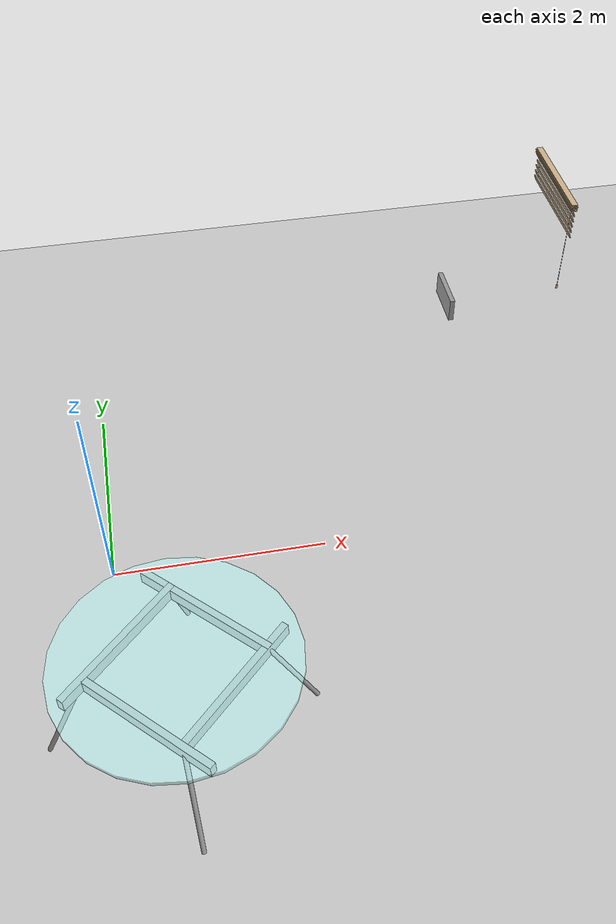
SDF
<sdf version="1.7">
 <world name="default">
  <model name="ground_plane">
   <static>1</static>
   <link name="link">
    <collision name="collision">
     <geometry><plane><normal>0 0 1</normal><size>100 100</size></plane></geometry>
     <surface>
      <contact><collide_bitmask>65535</collide_bitmask></contact>
      <friction><ode><mu>100</mu><mu2>50</mu2></ode></friction>
     </surface>
    </collision>
    <visual name="visual">
     <cast_shadows>0</cast_shadows>
     <geometry><plane><normal>0 0 1</normal><size>100 100</size></plane></geometry>
     <material>
      <script><uri>file://media/materials/scripts/gazebo.material</uri><name>Gazebo/Grey</name></script>
     </material>
    </visual>
   </link>
  </model>
  <model name="my_kitchen">
   <link name="link_clone_clone_clone_0_clone_clone_clone_0_clone_clone_clone_0_clone_0_clone_0">
    <inertial>
     <mass>1</mass>
     <inertia>
      <ixx>0.166667</ixx>
      <ixy>0</ixy>
      <ixz>0</ixz>
      <iyy>0.166667</iyy>
      <iyz>0</iyz>
      <izz>0.166667</izz>
     </inertia>
    </inertial>
    <pose>-0.177001 -0.511923 0.314755 0 -0 0</pose>
    <visual name="visual">
     <geometry><box><size>0.05 0.5 0.25</size></box></geometry>
     <material>
      <script><name>Gazebo/Grey</name><uri>file://media/materials/scripts/gazebo.material</uri></script>
      <shader type="pixel"><normal_map>__default__</normal_map></shader>
      <ambient>0.4 0.4 0.4 1</ambient>
      <diffuse>0.4 0.4 0.4 1</diffuse>
      <specular>0.01 0.01 0.01 1</specular>
      <emissive>0 0 0 1</emissive>
     </material>
     <pose>0 0 0.5 0 -0 1.5707</pose>
    </visual>
    <collision name="collision">
     <pose>0 0 0.5 0 -0 1.5707</pose>
     <geometry><box><size>0.05 0.5 0.25</size></box></geometry>
     <surface>
      <friction>
       <ode><mu>1</mu><mu2>1</mu2><fdir1>0 0 0</fdir1><slip1>0</slip1><slip2>0</slip2></ode>
       <torsional>
        <coefficient>1</coefficient>
        <patch_radius>0</patch_radius>
        <surface_radius>0</surface_radius>
        <use_patch_radius>1</use_patch_radius>
        <ode><slip>0</slip></ode>
       </torsional>
      </friction>
      <bounce><restitution_coefficient>0</restitution_coefficient><threshold>1e+06</threshold></bounce>
      <contact>
       <collide_without_contact>0</collide_without_contact>
       <collide_without_contact_bitmask>1</collide_without_contact_bitmask>
       <collide_bitmask>1</collide_bitmask>
       <ode>
        <soft_cfm>0</soft_cfm>
        <soft_erp>0.2</soft_erp>
        <kp>1e+13</kp>
        <kd>1</kd>
        <max_vel>0.01</max_vel>
        <min_depth>0</min_depth>
       </ode>
       <bullet>
        <split_impulse>1</split_impulse>
        <split_impulse_penetration_threshold>-0.01</split_impulse_penetration_threshold>
        <soft_cfm>0</soft_cfm>
        <soft_erp>0.2</soft_erp>
        <kp>1e+13</kp>
        <kd>1</kd>
       </bullet>
      </contact>
     </surface>
    </collision>
   </link>
   <static>1</static>
   <pose>4.27978 2.2633 0 0 0 -1.5708</pose>
  </model>
  <model name="my_round_table">
   <link name="link_0">
    <inertial>
     <mass>1</mass>
     <inertia><ixx>0.145833</ixx><ixy>0</ixy><ixz>0</ixz><iyy>0.145833</iyy><iyz>0</iyz><izz>0.125</izz></inertia>
    </inertial>
    <pose>-0.33877 -8.15163 0.5 0 -0 0</pose>
    <visual name="visual">
     <pose>0 0 0.45 0 -0 0</pose>
     <geometry><cylinder><radius>1</radius><length>0.04</length></cylinder></geometry>
     <material>
      <lighting>1</lighting>
      <script><uri>file://media/materials/scripts/gazebo.material</uri><name>Gazebo/Grey</name></script>
      <shader type="pixel"><normal_map>__default__</normal_map></shader>
      <ambient>0.79 1 1 0.4</ambient>
      <diffuse>0.79 1 1 1</diffuse>
      <specular>0.01 0.01 0.01 1</specular>
      <emissive>0 0 0 1</emissive>
     </material>
     <transparency>0.3</transparency>
    </visual>
    <collision name="collision">
     <pose>0 0 0.45 0 -0 0</pose>
     <geometry><cylinder><radius>1</radius><length>0.04</length></cylinder></geometry>
     <surface>
      <friction>
       <ode><mu>1</mu><mu2>1</mu2><fdir1>0 0 0</fdir1><slip1>0</slip1><slip2>0</slip2></ode>
       <torsional>
        <coefficient>1</coefficient>
        <patch_radius>0</patch_radius>
        <surface_radius>0</surface_radius>
        <use_patch_radius>1</use_patch_radius>
        <ode><slip>0</slip></ode>
       </torsional>
      </friction>
      <bounce><restitution_coefficient>0</restitution_coefficient><threshold>1e+06</threshold></bounce>
      <contact>
       <collide_without_contact>0</collide_without_contact>
       <collide_without_contact_bitmask>1</collide_without_contact_bitmask>
       <collide_bitmask>1</collide_bitmask>
       <ode>
        <soft_cfm>0</soft_cfm>
        <soft_erp>0.2</soft_erp>
        <kp>1e+13</kp>
        <kd>1</kd>
        <max_vel>0.01</max_vel>
        <min_depth>0</min_depth>
       </ode>
       <bullet>
        <split_impulse>1</split_impulse>
        <split_impulse_penetration_threshold>-0.01</split_impulse_penetration_threshold>
        <soft_cfm>0</soft_cfm>
        <soft_erp>0.2</soft_erp>
        <kp>1e+13</kp>
        <kd>1</kd>
       </bullet>
      </contact>
     </surface>
    </collision>
   </link>
   <link name="link_0_0">
    <inertial>
     <mass>1</mass>
     <inertia>
      <ixx>0.166667</ixx>
      <ixy>0</ixy>
      <ixz>0</ixz>
      <iyy>0.166667</iyy>
      <iyz>0</iyz>
      <izz>0.166667</izz>
     </inertia>
    </inertial>
    <pose>-0.834607 -8.25556 0.5 0 -0 0</pose>
    <visual name="visual">
     <pose>0 0 0.4 0 -0 0</pose>
     <geometry><box><size>0.06 1.3 0.12</size></box></geometry>
     <material>
      <lighting>1</lighting>
      <script><uri>file://media/materials/scripts/gazebo.material</uri><name>Gazebo/Grey</name></script>
      <shader type="pixel"><normal_map>__default__</normal_map></shader>
      <ambient>0.6 0.6 0.6 1</ambient>
      <diffuse>0.7 0.7 0.7 1</diffuse>
      <specular>0.01 0.01 0.01 1</specular>
      <emissive>0 0 0 1</emissive>
     </material>
    </visual>
    <collision name="collision">
     <pose>0 0 0.4 0 -0 0</pose>
     <geometry><box><size>0.06 1.3 0.12</size></box></geometry>
     <surface>
      <friction>
       <ode><mu>1</mu><mu2>1</mu2><fdir1>0 0 0</fdir1><slip1>0</slip1><slip2>0</slip2></ode>
       <torsional>
        <coefficient>1</coefficient>
        <patch_radius>0</patch_radius>
        <surface_radius>0</surface_radius>
        <use_patch_radius>1</use_patch_radius>
        <ode><slip>0</slip></ode>
       </torsional>
      </friction>
      <bounce><restitution_coefficient>0</restitution_coefficient><threshold>1e+06</threshold></bounce>
      <contact>
       <collide_without_contact>0</collide_without_contact>
       <collide_without_contact_bitmask>1</collide_without_contact_bitmask>
       <collide_bitmask>1</collide_bitmask>
       <ode>
        <soft_cfm>0</soft_cfm>
        <soft_erp>0.2</soft_erp>
        <kp>1e+13</kp>
        <kd>1</kd>
        <max_vel>0.01</max_vel>
        <min_depth>0</min_depth>
       </ode>
       <bullet>
        <split_impulse>1</split_impulse>
        <split_impulse_penetration_threshold>-0.01</split_impulse_penetration_threshold>
        <soft_cfm>0</soft_cfm>
        <soft_erp>0.2</soft_erp>
        <kp>1e+13</kp>
        <kd>1</kd>
       </bullet>
      </contact>
     </surface>
    </collision>
   </link>
   <link name="link_0_0_clone">
    <inertial>
     <mass>1</mass>
     <inertia>
      <ixx>0.166667</ixx>
      <ixy>0</ixy>
      <ixz>0</ixz>
      <iyy>0.166667</iyy>
      <iyz>0</iyz>
      <izz>0.166667</izz>
     </inertia>
    </inertial>
    <pose>-0.470736 -7.63546 0.5 0 -0 0</pose>
    <visual name="visual_0">
     <pose>0 0 0.4 0 -0 1.5707</pose>
     <geometry><box><size>0.06 1.3 0.12</size></box></geometry>
     <material>
      <lighting>1</lighting>
      <script><uri>file://media/materials/scripts/gazebo.material</uri><name>Gazebo/Grey</name></script>
      <shader type="pixel"><normal_map>__default__</normal_map></shader>
      <ambient>0.6 0.6 0.6 1</ambient>
      <diffuse>0.7 0.7 0.7 1</diffuse>
      <specular>0.01 0.01 0.01 1</specular>
      <emissive>0 0 0 1</emissive>
     </material>
    </visual>
    <collision name="collision">
     <pose>0 0 0.4 0 -0 1.5707</pose>
     <geometry><box><size>0.06 1.3 0.12</size></box></geometry>
     <surface>
      <friction>
       <ode><mu>1</mu><mu2>1</mu2><fdir1>0 0 0</fdir1><slip1>0</slip1><slip2>0</slip2></ode>
       <torsional>
        <coefficient>1</coefficient>
        <patch_radius>0</patch_radius>
        <surface_radius>0</surface_radius>
        <use_patch_radius>1</use_patch_radius>
        <ode><slip>0</slip></ode>
       </torsional>
      </friction>
      <bounce><restitution_coefficient>0</restitution_coefficient><threshold>1e+06</threshold></bounce>
      <contact>
       <collide_without_contact>0</collide_without_contact>
       <collide_without_contact_bitmask>1</collide_without_contact_bitmask>
       <collide_bitmask>1</collide_bitmask>
       <ode>
        <soft_cfm>0</soft_cfm>
        <soft_erp>0.2</soft_erp>
        <kp>1e+13</kp>
        <kd>1</kd>
        <max_vel>0.01</max_vel>
        <min_depth>0</min_depth>
       </ode>
       <bullet>
        <split_impulse>1</split_impulse>
        <split_impulse_penetration_threshold>-0.01</split_impulse_penetration_threshold>
        <soft_cfm>0</soft_cfm>
        <soft_erp>0.2</soft_erp>
        <kp>1e+13</kp>
        <kd>1</kd>
       </bullet>
      </contact>
     </surface>
    </collision>
   </link>
   <link name="link_0_0_clone_0">
    <inertial>
     <mass>1</mass>
     <inertia>
      <ixx>0.166667</ixx>
      <ixy>0</ixy>
      <ixz>0</ixz>
      <iyy>0.166667</iyy>
      <iyz>0</iyz>
      <izz>0.166667</izz>
     </inertia>
    </inertial>
    <pose>0.150666 -8.04578 0.5 0 -0 0</pose>
    <visual name="visual_0">
     <pose>0 0 0.4 0 -0 0</pose>
     <geometry><box><size>0.06 1.3 0.12</size></box></geometry>
     <material>
      <lighting>1</lighting>
      <script><uri>file://media/materials/scripts/gazebo.material</uri><name>Gazebo/Grey</name></script>
      <shader type="pixel"><normal_map>__default__</normal_map></shader>
      <ambient>0.6 0.6 0.6 1</ambient>
      <diffuse>0.7 0.7 0.7 1</diffuse>
      <specular>0.01 0.01 0.01 1</specular>
      <emissive>0 0 0 1</emissive>
     </material>
    </visual>
    <collision name="collision">
     <pose>0 0 0.4 0 -0 0</pose>
     <geometry><box><size>0.06 1.3 0.12</size></box></geometry>
     <surface>
      <friction>
       <ode><mu>1</mu><mu2>1</mu2><fdir1>0 0 0</fdir1><slip1>0</slip1><slip2>0</slip2></ode>
       <torsional>
        <coefficient>1</coefficient>
        <patch_radius>0</patch_radius>
        <surface_radius>0</surface_radius>
        <use_patch_radius>1</use_patch_radius>
        <ode><slip>0</slip></ode>
       </torsional>
      </friction>
      <bounce><restitution_coefficient>0</restitution_coefficient><threshold>1e+06</threshold></bounce>
      <contact>
       <collide_without_contact>0</collide_without_contact>
       <collide_without_contact_bitmask>1</collide_without_contact_bitmask>
       <collide_bitmask>1</collide_bitmask>
       <ode>
        <soft_cfm>0</soft_cfm>
        <soft_erp>0.2</soft_erp>
        <kp>1e+13</kp>
        <kd>1</kd>
        <max_vel>0.01</max_vel>
        <min_depth>0</min_depth>
       </ode>
       <bullet>
        <split_impulse>1</split_impulse>
        <split_impulse_penetration_threshold>-0.01</split_impulse_penetration_threshold>
        <soft_cfm>0</soft_cfm>
        <soft_erp>0.2</soft_erp>
        <kp>1e+13</kp>
        <kd>1</kd>
       </bullet>
      </contact>
     </surface>
    </collision>
   </link>
   <link name="link_0_0_clone_clone">
    <inertial>
     <mass>1</mass>
     <inertia>
      <ixx>0.166667</ixx>
      <ixy>0</ixy>
      <ixz>0</ixz>
      <iyy>0.166667</iyy>
      <iyz>0</iyz>
      <izz>0.166667</izz>
     </inertia>
    </inertial>
    <pose>-0.215262 -8.66786 0.5 0 -0 0</pose>
    <visual name="visual_0">
     <pose>0 0 0.4 0 -0 1.5707</pose>
     <geometry><box><size>0.06 1.3 0.12</size></box></geometry>
     <material>
      <lighting>1</lighting>
      <script><uri>file://media/materials/scripts/gazebo.material</uri><name>Gazebo/Grey</name></script>
      <shader type="pixel"><normal_map>__default__</normal_map></shader>
      <ambient>0.6 0.6 0.6 1</ambient>
      <diffuse>0.7 0.7 0.7 1</diffuse>
      <specular>0.01 0.01 0.01 1</specular>
      <emissive>0 0 0 1</emissive>
     </material>
    </visual>
    <collision name="collision">
     <pose>0 0 0.4 0 -0 1.5707</pose>
     <geometry><box><size>0.06 1.3 0.12</size></box></geometry>
     <surface>
      <friction>
       <ode><mu>1</mu><mu2>1</mu2><fdir1>0 0 0</fdir1><slip1>0</slip1><slip2>0</slip2></ode>
       <torsional>
        <coefficient>1</coefficient>
        <patch_radius>0</patch_radius>
        <surface_radius>0</surface_radius>
        <use_patch_radius>1</use_patch_radius>
        <ode><slip>0</slip></ode>
       </torsional>
      </friction>
      <bounce><restitution_coefficient>0</restitution_coefficient><threshold>1e+06</threshold></bounce>
      <contact>
       <collide_without_contact>0</collide_without_contact>
       <collide_without_contact_bitmask>1</collide_without_contact_bitmask>
       <collide_bitmask>1</collide_bitmask>
       <ode>
        <soft_cfm>0</soft_cfm>
        <soft_erp>0.2</soft_erp>
        <kp>1e+13</kp>
        <kd>1</kd>
        <max_vel>0.01</max_vel>
        <min_depth>0</min_depth>
       </ode>
       <bullet>
        <split_impulse>1</split_impulse>
        <split_impulse_penetration_threshold>-0.01</split_impulse_penetration_threshold>
        <soft_cfm>0</soft_cfm>
        <soft_erp>0.2</soft_erp>
        <kp>1e+13</kp>
        <kd>1</kd>
       </bullet>
      </contact>
     </surface>
    </collision>
   </link>
   <link name="link_1_clone_1_clone_clone">
    <inertial>
     <mass>1</mass>
     <inertia><ixx>0.145833</ixx><ixy>0</ixy><ixz>0</ixz><iyy>0.145833</iyy><iyz>0</iyz><izz>0.125</izz></inertia>
    </inertial>
    <pose>-0.929071 -7.47144 0.501681 0 0 -0.237389</pose>
    <visual name="visual">
     <pose>0 0 -0.02 0.3 0.3 0</pose>
     <geometry><cylinder><radius>0.02</radius><length>1</length></cylinder></geometry>
     <material>
      <lighting>1</lighting>
      <script><uri>file://media/materials/scripts/gazebo.material</uri><name>Gazebo/Grey</name></script>
      <shader type="pixel"><normal_map>__default__</normal_map></shader>
      <ambient>0.5 0.5 0.5 1</ambient>
      <diffuse>0.8 0.8 0.8 1</diffuse>
      <specular>0.01 0.01 0.01 1</specular>
      <emissive>0 0 0 1</emissive>
     </material>
    </visual>
    <collision name="collision">
     <pose>0 0 -0.02 0.3 0.3 0</pose>
     <geometry><cylinder><radius>0.02</radius><length>1</length></cylinder></geometry>
     <surface>
      <friction>
       <ode><mu>1</mu><mu2>1</mu2><fdir1>0 0 0</fdir1><slip1>0</slip1><slip2>0</slip2></ode>
       <torsional>
        <coefficient>1</coefficient>
        <patch_radius>0</patch_radius>
        <surface_radius>0</surface_radius>
        <use_patch_radius>1</use_patch_radius>
        <ode><slip>0</slip></ode>
       </torsional>
      </friction>
      <bounce><restitution_coefficient>0</restitution_coefficient><threshold>1e+06</threshold></bounce>
      <contact>
       <collide_without_contact>0</collide_without_contact>
       <collide_without_contact_bitmask>1</collide_without_contact_bitmask>
       <collide_bitmask>1</collide_bitmask>
       <ode>
        <soft_cfm>0</soft_cfm>
        <soft_erp>0.2</soft_erp>
        <kp>1e+13</kp>
        <kd>1</kd>
        <max_vel>0.01</max_vel>
        <min_depth>0</min_depth>
       </ode>
       <bullet>
        <split_impulse>1</split_impulse>
        <split_impulse_penetration_threshold>-0.01</split_impulse_penetration_threshold>
        <soft_cfm>0</soft_cfm>
        <soft_erp>0.2</soft_erp>
        <kp>1e+13</kp>
        <kd>1</kd>
       </bullet>
      </contact>
     </surface>
    </collision>
   </link>
   <link name="link_1_clone_1_clone_clone_clone">
    <inertial>
     <mass>1</mass>
     <inertia><ixx>0.145833</ixx><ixy>0</ixy><ixz>0</ixz><iyy>0.145833</iyy><iyz>0</iyz><izz>0.125</izz></inertia>
    </inertial>
    <pose>-0.965306 -8.81368 0.501681 0 -0 1.63052</pose>
    <visual name="visual">
     <pose>0 0 -0.02 0.3 0.3 0</pose>
     <geometry><cylinder><radius>0.02</radius><length>1</length></cylinder></geometry>
     <material>
      <lighting>1</lighting>
      <script><uri>file://media/materials/scripts/gazebo.material</uri><name>Gazebo/Grey</name></script>
      <shader type="pixel"><normal_map>__default__</normal_map></shader>
      <ambient>0.5 0.5 0.5 1</ambient>
      <diffuse>0.8 0.8 0.8 1</diffuse>
      <specular>0.01 0.01 0.01 1</specular>
      <emissive>0 0 0 1</emissive>
     </material>
    </visual>
    <collision name="collision">
     <pose>0 0 -0.02 0.3 0.3 0</pose>
     <geometry><cylinder><radius>0.02</radius><length>1</length></cylinder></geometry>
     <surface>
      <friction>
       <ode><mu>1</mu><mu2>1</mu2><fdir1>0 0 0</fdir1><slip1>0</slip1><slip2>0</slip2></ode>
       <torsional>
        <coefficient>1</coefficient>
        <patch_radius>0</patch_radius>
        <surface_radius>0</surface_radius>
        <use_patch_radius>1</use_patch_radius>
        <ode><slip>0</slip></ode>
       </torsional>
      </friction>
      <bounce><restitution_coefficient>0</restitution_coefficient><threshold>1e+06</threshold></bounce>
      <contact>
       <collide_without_contact>0</collide_without_contact>
       <collide_without_contact_bitmask>1</collide_without_contact_bitmask>
       <collide_bitmask>1</collide_bitmask>
       <ode>
        <soft_cfm>0</soft_cfm>
        <soft_erp>0.2</soft_erp>
        <kp>1e+13</kp>
        <kd>1</kd>
        <max_vel>0.01</max_vel>
        <min_depth>0</min_depth>
       </ode>
       <bullet>
        <split_impulse>1</split_impulse>
        <split_impulse_penetration_threshold>-0.01</split_impulse_penetration_threshold>
        <soft_cfm>0</soft_cfm>
        <soft_erp>0.2</soft_erp>
        <kp>1e+13</kp>
        <kd>1</kd>
       </bullet>
      </contact>
     </surface>
    </collision>
   </link>
   <link name="link_1_clone_1_clone_clone_clone_0">
    <inertial>
     <mass>1</mass>
     <inertia><ixx>0.145833</ixx><ixy>0</ixy><ixz>0</ixz><iyy>0.145833</iyy><iyz>0</iyz><izz>0.125</izz></inertia>
    </inertial>
    <pose>0.275919 -7.4779 0.501681 0 0 -1.39702</pose>
    <visual name="visual">
     <pose>0 0 -0.02 0.3 0.3 0</pose>
     <geometry><cylinder><radius>0.02</radius><length>1</length></cylinder></geometry>
     <material>
      <lighting>1</lighting>
      <script><uri>file://media/materials/scripts/gazebo.material</uri><name>Gazebo/Grey</name></script>
      <shader type="pixel"><normal_map>__default__</normal_map></shader>
      <ambient>0.5 0.5 0.5 1</ambient>
      <diffuse>0.8 0.8 0.8 1</diffuse>
      <specular>0.01 0.01 0.01 1</specular>
      <emissive>0 0 0 1</emissive>
     </material>
    </visual>
    <collision name="collision">
     <pose>0 0 0 0.3 0.3 0</pose>
     <geometry><cylinder><radius>0.02</radius><length>1</length></cylinder></geometry>
     <surface>
      <friction>
       <ode><mu>1</mu><mu2>1</mu2><fdir1>0 0 0</fdir1><slip1>0</slip1><slip2>0</slip2></ode>
       <torsional>
        <coefficient>1</coefficient>
        <patch_radius>0</patch_radius>
        <surface_radius>0</surface_radius>
        <use_patch_radius>1</use_patch_radius>
        <ode><slip>0</slip></ode>
       </torsional>
      </friction>
      <bounce><restitution_coefficient>0</restitution_coefficient><threshold>1e+06</threshold></bounce>
      <contact>
       <collide_without_contact>0</collide_without_contact>
       <collide_without_contact_bitmask>1</collide_without_contact_bitmask>
       <collide_bitmask>1</collide_bitmask>
       <ode>
        <soft_cfm>0</soft_cfm>
        <soft_erp>0.2</soft_erp>
        <kp>1e+13</kp>
        <kd>1</kd>
        <max_vel>0.01</max_vel>
        <min_depth>0</min_depth>
       </ode>
       <bullet>
        <split_impulse>1</split_impulse>
        <split_impulse_penetration_threshold>-0.01</split_impulse_penetration_threshold>
        <soft_cfm>0</soft_cfm>
        <soft_erp>0.2</soft_erp>
        <kp>1e+13</kp>
        <kd>1</kd>
       </bullet>
      </contact>
     </surface>
    </collision>
   </link>
   <link name="link_1_clone_1_clone_clone_clone_0_clone">
    <inertial>
     <mass>1</mass>
     <inertia><ixx>0.145833</ixx><ixy>0</ixy><ixz>0</ixz><iyy>0.145833</iyy><iyz>0</iyz><izz>0.125</izz></inertia>
    </inertial>
    <pose>0.309037 -8.79302 0.501681 0 0 -3.03586</pose>
    <visual name="visual">
     <pose>0 0 -0.02 0.3 0.3 0</pose>
     <geometry><cylinder><radius>0.02</radius><length>1</length></cylinder></geometry>
     <material>
      <lighting>1</lighting>
      <script><uri>file://media/materials/scripts/gazebo.material</uri><name>Gazebo/Grey</name></script>
      <shader type="pixel"><normal_map>__default__</normal_map></shader>
      <ambient>0.5 0.5 0.5 1</ambient>
      <diffuse>0.8 0.8 0.8 1</diffuse>
      <specular>0.01 0.01 0.01 1</specular>
      <emissive>0 0 0 1</emissive>
     </material>
    </visual>
    <collision name="collision">
     <pose>0 0 -0.02 0.3 0.3 0</pose>
     <geometry><cylinder><radius>0.02</radius><length>1</length></cylinder></geometry>
     <surface>
      <friction>
       <ode><mu>1</mu><mu2>1</mu2><fdir1>0 0 0</fdir1><slip1>0</slip1><slip2>0</slip2></ode>
       <torsional>
        <coefficient>1</coefficient>
        <patch_radius>0</patch_radius>
        <surface_radius>0</surface_radius>
        <use_patch_radius>1</use_patch_radius>
        <ode><slip>0</slip></ode>
       </torsional>
      </friction>
      <bounce><restitution_coefficient>0</restitution_coefficient><threshold>1e+06</threshold></bounce>
      <contact>
       <collide_without_contact>0</collide_without_contact>
       <collide_without_contact_bitmask>1</collide_without_contact_bitmask>
       <collide_bitmask>1</collide_bitmask>
       <ode>
        <soft_cfm>0</soft_cfm>
        <soft_erp>0.2</soft_erp>
        <kp>1e+13</kp>
        <kd>1</kd>
        <max_vel>0.01</max_vel>
        <min_depth>0</min_depth>
       </ode>
       <bullet>
        <split_impulse>1</split_impulse>
        <split_impulse_penetration_threshold>-0.01</split_impulse_penetration_threshold>
        <soft_cfm>0</soft_cfm>
        <soft_erp>0.2</soft_erp>
        <kp>1e+13</kp>
        <kd>1</kd>
       </bullet>
      </contact>
     </surface>
    </collision>
   </link>
   <static>1</static>
   <pose>6.52338 3.85266 0 0 0 -0.785398</pose>
  </model>
  <model name="my_blinds">
   <link name="link">
    <inertial>
     <mass>1</mass>
     <inertia>
      <ixx>0.166667</ixx>
      <ixy>0</ixy>
      <ixz>0</ixz>
      <iyy>0.166667</iyy>
      <iyz>0</iyz>
      <izz>0.166667</izz>
     </inertia>
    </inertial>
    <pose>0.455071 0.017039 0 0 -0 0</pose>
    <visual name="visual">
     <geometry><box><size>0.01 1.05 0.06</size></box></geometry>
     <material>
      <script><name>Gazebo/Grey</name><uri>file://media/materials/scripts/gazebo.material</uri></script>
      <shader type="pixel"><normal_map>__default__</normal_map></shader>
      <ambient>0.82 0.71 0.55 1</ambient>
      <diffuse>0.82 0.71 0.55 1</diffuse>
      <specular>0.01 0.01 0.01 1</specular>
      <emissive>0 0 0 1</emissive>
     </material>
     <pose>0 0 2.187 3.14159 1.57079 3.14159</pose>
    </visual>
    <collision name="collision">
     <pose>0 0 2.187 3.14159 1.57079 3.14159</pose>
     <geometry><box><size>0.01 1.05 0.06</size></box></geometry>
     <surface>
      <friction>
       <ode><mu>1</mu><mu2>1</mu2><fdir1>0 0 0</fdir1><slip1>0</slip1><slip2>0</slip2></ode>
       <torsional>
        <coefficient>1</coefficient>
        <patch_radius>0</patch_radius>
        <surface_radius>0</surface_radius>
        <use_patch_radius>1</use_patch_radius>
        <ode><slip>0</slip></ode>
       </torsional>
      </friction>
      <bounce><restitution_coefficient>0</restitution_coefficient><threshold>1e+06</threshold></bounce>
      <contact>
       <collide_without_contact>0</collide_without_contact>
       <collide_without_contact_bitmask>1</collide_without_contact_bitmask>
       <collide_bitmask>1</collide_bitmask>
       <ode>
        <soft_cfm>0</soft_cfm>
        <soft_erp>0.2</soft_erp>
        <kp>1e+13</kp>
        <kd>1</kd>
        <max_vel>0.01</max_vel>
        <min_depth>0</min_depth>
       </ode>
       <bullet>
        <split_impulse>1</split_impulse>
        <split_impulse_penetration_threshold>-0.01</split_impulse_penetration_threshold>
        <soft_cfm>0</soft_cfm>
        <soft_erp>0.2</soft_erp>
        <kp>1e+13</kp>
        <kd>1</kd>
       </bullet>
      </contact>
     </surface>
    </collision>
   </link>
   <link name="left_rope">
    <inertial>
     <mass>1</mass>
     <inertia><ixx>0.145833</ixx><ixy>0</ixy><ixz>0</ixz><iyy>0.145833</iyy><iyz>0</iyz><izz>0.125</izz></inertia>
    </inertial>
    <pose>0.452907 0.474129 0.827292 0 -0 0</pose>
    <visual name="visual">
     <pose>0 0 1.24 0 -0 0</pose>
     <geometry><cylinder><radius>0.002</radius><length>0.345</length></cylinder></geometry>
     <material>
      <lighting>1</lighting>
      <script><uri>file://media/materials/scripts/gazebo.material</uri><name>Gazebo/Grey</name></script>
      <shader type="pixel"><normal_map>__default__</normal_map></shader>
      <ambient>1 1 1 1</ambient>
      <diffuse>0.8 0.8 0.8 1</diffuse>
      <specular>0.01 0.01 0.01 1</specular>
      <emissive>0 0 0 1</emissive>
     </material>
    </visual>
    <collision name="collision">
     <pose>0 0 1.24 0 -0 0</pose>
     <geometry><cylinder><radius>0.002</radius><length>0.345</length></cylinder></geometry>
     <surface>
      <friction>
       <ode><mu>1</mu><mu2>1</mu2><fdir1>0 0 0</fdir1><slip1>0</slip1><slip2>0</slip2></ode>
       <torsional>
        <coefficient>1</coefficient>
        <patch_radius>0</patch_radius>
        <surface_radius>0</surface_radius>
        <use_patch_radius>1</use_patch_radius>
        <ode><slip>0</slip></ode>
       </torsional>
      </friction>
      <bounce><restitution_coefficient>0</restitution_coefficient><threshold>1e+06</threshold></bounce>
      <contact>
       <collide_without_contact>0</collide_without_contact>
       <collide_without_contact_bitmask>1</collide_without_contact_bitmask>
       <collide_bitmask>1</collide_bitmask>
       <ode>
        <soft_cfm>0</soft_cfm>
        <soft_erp>0.2</soft_erp>
        <kp>1e+13</kp>
        <kd>1</kd>
        <max_vel>0.01</max_vel>
        <min_depth>0</min_depth>
       </ode>
       <bullet>
        <split_impulse>1</split_impulse>
        <split_impulse_penetration_threshold>-0.01</split_impulse_penetration_threshold>
        <soft_cfm>0</soft_cfm>
        <soft_erp>0.2</soft_erp>
        <kp>1e+13</kp>
        <kd>1</kd>
       </bullet>
      </contact>
     </surface>
    </collision>
   </link>
   <link name="link_1">
    <inertial>
     <mass>1</mass>
     <inertia>
      <ixx>0.166667</ixx>
      <ixy>0</ixy>
      <ixz>0</ixz>
      <iyy>0.166667</iyy>
      <iyz>0</iyz>
      <izz>0.166667</izz>
     </inertia>
    </inertial>
    <pose>0.455071 0.017039 0 0 -0 0</pose>
    <visual name="visual">
     <geometry><box><size>0.01 1.05 0.06</size></box></geometry>
     <material>
      <script><name>Gazebo/Grey</name><uri>file://media/materials/scripts/gazebo.material</uri></script>
      <shader type="pixel"><normal_map>__default__</normal_map></shader>
      <ambient>0.82 0.71 0.55 1</ambient>
      <diffuse>0.82 0.71 0.55 1</diffuse>
      <specular>0.01 0.01 0.01 1</specular>
      <emissive>0 0 0 1</emissive>
     </material>
     <pose>0 0 2.15 0 -0.39 0</pose>
    </visual>
    <collision name="collision">
     <pose>0 0 2.15 0 -0.39 0</pose>
     <geometry><box><size>0.01 1.05 0.06</size></box></geometry>
     <surface>
      <friction>
       <ode><mu>1</mu><mu2>1</mu2><fdir1>0 0 0</fdir1><slip1>0</slip1><slip2>0</slip2></ode>
       <torsional>
        <coefficient>1</coefficient>
        <patch_radius>0</patch_radius>
        <surface_radius>0</surface_radius>
        <use_patch_radius>1</use_patch_radius>
        <ode><slip>0</slip></ode>
       </torsional>
      </friction>
      <bounce><restitution_coefficient>0</restitution_coefficient><threshold>1e+06</threshold></bounce>
      <contact>
       <collide_without_contact>0</collide_without_contact>
       <collide_without_contact_bitmask>1</collide_without_contact_bitmask>
       <collide_bitmask>1</collide_bitmask>
       <ode>
        <soft_cfm>0</soft_cfm>
        <soft_erp>0.2</soft_erp>
        <kp>1e+13</kp>
        <kd>1</kd>
        <max_vel>0.01</max_vel>
        <min_depth>0</min_depth>
       </ode>
       <bullet>
        <split_impulse>1</split_impulse>
        <split_impulse_penetration_threshold>-0.01</split_impulse_penetration_threshold>
        <soft_cfm>0</soft_cfm>
        <soft_erp>0.2</soft_erp>
        <kp>1e+13</kp>
        <kd>1</kd>
       </bullet>
      </contact>
     </surface>
    </collision>
   </link>
   <link name="link_1_0">
    <inertial>
     <mass>1</mass>
     <inertia><ixx>0.145833</ixx><ixy>0</ixy><ixz>0</ixz><iyy>0.145833</iyy><iyz>0</iyz><izz>0.125</izz></inertia>
    </inertial>
    <pose>0.454407 -0.443789 1.24533 0 -0 0</pose>
    <visual name="visual">
     <geometry><cylinder><radius>0.01</radius><length>0.04</length></cylinder></geometry>
     <material>
      <lighting>1</lighting>
      <script><uri>file://media/materials/scripts/gazebo.material</uri><name>Gazebo/Grey</name></script>
      <shader type="pixel"><normal_map>__default__</normal_map></shader>
      <ambient>0.82 0.71 0.55 1</ambient>
      <diffuse>0.82 0.71 0.55 1</diffuse>
      <specular>0.01 0.01 0.01 1</specular>
      <emissive>0 0 0 1</emissive>
     </material>
    </visual>
    <collision name="collision">
     <geometry><cylinder><radius>0.01</radius><length>0.04</length></cylinder></geometry>
     <surface>
      <friction>
       <ode><mu>1</mu><mu2>1</mu2><fdir1>0 0 0</fdir1><slip1>0</slip1><slip2>0</slip2></ode>
       <torsional>
        <coefficient>1</coefficient>
        <patch_radius>0</patch_radius>
        <surface_radius>0</surface_radius>
        <use_patch_radius>1</use_patch_radius>
        <ode><slip>0</slip></ode>
       </torsional>
      </friction>
      <bounce><restitution_coefficient>0</restitution_coefficient><threshold>1e+06</threshold></bounce>
      <contact>
       <collide_without_contact>0</collide_without_contact>
       <collide_without_contact_bitmask>1</collide_without_contact_bitmask>
       <collide_bitmask>1</collide_bitmask>
       <ode>
        <soft_cfm>0</soft_cfm>
        <soft_erp>0.2</soft_erp>
        <kp>1e+13</kp>
        <kd>1</kd>
        <max_vel>0.01</max_vel>
        <min_depth>0</min_depth>
       </ode>
       <bullet>
        <split_impulse>1</split_impulse>
        <split_impulse_penetration_threshold>-0.01</split_impulse_penetration_threshold>
        <soft_cfm>0</soft_cfm>
        <soft_erp>0.2</soft_erp>
        <kp>1e+13</kp>
        <kd>1</kd>
       </bullet>
      </contact>
     </surface>
    </collision>
   </link>
   <link name="link_2">
    <inertial>
     <mass>1</mass>
     <inertia>
      <ixx>0.166667</ixx>
      <ixy>0</ixy>
      <ixz>0</ixz>
      <iyy>0.166667</iyy>
      <iyz>0</iyz>
      <izz>0.166667</izz>
     </inertia>
    </inertial>
    <pose>0.455071 0.017039 0 0 -0 0</pose>
    <visual name="visual">
     <geometry><box><size>0.01 1.05 0.06</size></box></geometry>
     <material>
      <script><name>Gazebo/Grey</name><uri>file://media/materials/scripts/gazebo.material</uri></script>
      <shader type="pixel"><normal_map>__default__</normal_map></shader>
      <ambient>0.82 0.71 0.55 1</ambient>
      <diffuse>0.82 0.71 0.55 1</diffuse>
      <specular>0.01 0.01 0.01 1</specular>
      <emissive>0 0 0 1</emissive>
     </material>
     <pose>0 0 2.09 0 -0.39 0</pose>
    </visual>
    <collision name="collision">
     <pose>0 0 2.09 0 -0.39 0</pose>
     <geometry><box><size>0.01 1.05 0.06</size></box></geometry>
     <surface>
      <friction>
       <ode><mu>1</mu><mu2>1</mu2><fdir1>0 0 0</fdir1><slip1>0</slip1><slip2>0</slip2></ode>
       <torsional>
        <coefficient>1</coefficient>
        <patch_radius>0</patch_radius>
        <surface_radius>0</surface_radius>
        <use_patch_radius>1</use_patch_radius>
        <ode><slip>0</slip></ode>
       </torsional>
      </friction>
      <bounce><restitution_coefficient>0</restitution_coefficient><threshold>1e+06</threshold></bounce>
      <contact>
       <collide_without_contact>0</collide_without_contact>
       <collide_without_contact_bitmask>1</collide_without_contact_bitmask>
       <collide_bitmask>1</collide_bitmask>
       <ode>
        <soft_cfm>0</soft_cfm>
        <soft_erp>0.2</soft_erp>
        <kp>1e+13</kp>
        <kd>1</kd>
        <max_vel>0.01</max_vel>
        <min_depth>0</min_depth>
       </ode>
       <bullet>
        <split_impulse>1</split_impulse>
        <split_impulse_penetration_threshold>-0.01</split_impulse_penetration_threshold>
        <soft_cfm>0</soft_cfm>
        <soft_erp>0.2</soft_erp>
        <kp>1e+13</kp>
        <kd>1</kd>
       </bullet>
      </contact>
     </surface>
    </collision>
   </link>
   <link name="link_3">
    <inertial>
     <mass>1</mass>
     <inertia>
      <ixx>0.166667</ixx>
      <ixy>0</ixy>
      <ixz>0</ixz>
      <iyy>0.166667</iyy>
      <iyz>0</iyz>
      <izz>0.166667</izz>
     </inertia>
    </inertial>
    <pose>0.455071 0.017039 0 0 -0 0</pose>
    <visual name="visual">
     <geometry><box><size>0.01 1.05 0.06</size></box></geometry>
     <material>
      <script><name>Gazebo/Grey</name><uri>file://media/materials/scripts/gazebo.material</uri></script>
      <shader type="pixel"><normal_map>__default__</normal_map></shader>
      <ambient>0.82 0.71 0.55 1</ambient>
      <diffuse>0.82 0.71 0.55 1</diffuse>
      <specular>0.01 0.01 0.01 1</specular>
      <emissive>0 0 0 1</emissive>
     </material>
     <pose>0 0 2.03 0 -0.39 0</pose>
    </visual>
    <collision name="collision">
     <pose>0 0 2.03 0 -0.39 0</pose>
     <geometry><box><size>0.01 1.05 0.06</size></box></geometry>
     <surface>
      <friction>
       <ode><mu>1</mu><mu2>1</mu2><fdir1>0 0 0</fdir1><slip1>0</slip1><slip2>0</slip2></ode>
       <torsional>
        <coefficient>1</coefficient>
        <patch_radius>0</patch_radius>
        <surface_radius>0</surface_radius>
        <use_patch_radius>1</use_patch_radius>
        <ode><slip>0</slip></ode>
       </torsional>
      </friction>
      <bounce><restitution_coefficient>0</restitution_coefficient><threshold>1e+06</threshold></bounce>
      <contact>
       <collide_without_contact>0</collide_without_contact>
       <collide_without_contact_bitmask>1</collide_without_contact_bitmask>
       <collide_bitmask>1</collide_bitmask>
       <ode>
        <soft_cfm>0</soft_cfm>
        <soft_erp>0.2</soft_erp>
        <kp>1e+13</kp>
        <kd>1</kd>
        <max_vel>0.01</max_vel>
        <min_depth>0</min_depth>
       </ode>
       <bullet>
        <split_impulse>1</split_impulse>
        <split_impulse_penetration_threshold>-0.01</split_impulse_penetration_threshold>
        <soft_cfm>0</soft_cfm>
        <soft_erp>0.2</soft_erp>
        <kp>1e+13</kp>
        <kd>1</kd>
       </bullet>
      </contact>
     </surface>
    </collision>
   </link>
   <link name="link_4">
    <inertial>
     <mass>1</mass>
     <inertia>
      <ixx>0.166667</ixx>
      <ixy>0</ixy>
      <ixz>0</ixz>
      <iyy>0.166667</iyy>
      <iyz>0</iyz>
      <izz>0.166667</izz>
     </inertia>
    </inertial>
    <pose>0.455071 0.017039 0 0 -0 0</pose>
    <visual name="visual">
     <geometry><box><size>0.01 1.05 0.06</size></box></geometry>
     <material>
      <script><name>Gazebo/Grey</name><uri>file://media/materials/scripts/gazebo.material</uri></script>
      <shader type="pixel"><normal_map>__default__</normal_map></shader>
      <ambient>0.82 0.71 0.55 1</ambient>
      <diffuse>0.82 0.71 0.55 1</diffuse>
      <specular>0.01 0.01 0.01 1</specular>
      <emissive>0 0 0 1</emissive>
     </material>
     <pose>0 0 1.97 0 -0.39 0</pose>
    </visual>
    <collision name="collision">
     <pose>0 0 1.97 0 -0.39 0</pose>
     <geometry><box><size>0.01 1.05 0.06</size></box></geometry>
     <surface>
      <friction>
       <ode><mu>1</mu><mu2>1</mu2><fdir1>0 0 0</fdir1><slip1>0</slip1><slip2>0</slip2></ode>
       <torsional>
        <coefficient>1</coefficient>
        <patch_radius>0</patch_radius>
        <surface_radius>0</surface_radius>
        <use_patch_radius>1</use_patch_radius>
        <ode><slip>0</slip></ode>
       </torsional>
      </friction>
      <bounce><restitution_coefficient>0</restitution_coefficient><threshold>1e+06</threshold></bounce>
      <contact>
       <collide_without_contact>0</collide_without_contact>
       <collide_without_contact_bitmask>1</collide_without_contact_bitmask>
       <collide_bitmask>1</collide_bitmask>
       <ode>
        <soft_cfm>0</soft_cfm>
        <soft_erp>0.2</soft_erp>
        <kp>1e+13</kp>
        <kd>1</kd>
        <max_vel>0.01</max_vel>
        <min_depth>0</min_depth>
       </ode>
       <bullet>
        <split_impulse>1</split_impulse>
        <split_impulse_penetration_threshold>-0.01</split_impulse_penetration_threshold>
        <soft_cfm>0</soft_cfm>
        <soft_erp>0.2</soft_erp>
        <kp>1e+13</kp>
        <kd>1</kd>
       </bullet>
      </contact>
     </surface>
    </collision>
   </link>
   <link name="link_5">
    <inertial>
     <mass>1</mass>
     <inertia>
      <ixx>0.166667</ixx>
      <ixy>0</ixy>
      <ixz>0</ixz>
      <iyy>0.166667</iyy>
      <iyz>0</iyz>
      <izz>0.166667</izz>
     </inertia>
    </inertial>
    <pose>0.455071 0.017039 0 0 -0 0</pose>
    <visual name="visual">
     <geometry><box><size>0.01 1.05 0.06</size></box></geometry>
     <material>
      <script><name>Gazebo/Grey</name><uri>file://media/materials/scripts/gazebo.material</uri></script>
      <shader type="pixel"><normal_map>__default__</normal_map></shader>
      <ambient>0.82 0.71 0.55 1</ambient>
      <diffuse>0.82 0.71 0.55 1</diffuse>
      <specular>0.01 0.01 0.01 1</specular>
      <emissive>0 0 0 1</emissive>
     </material>
     <pose>0 0 1.91 0 -0.39 0</pose>
    </visual>
    <collision name="collision">
     <pose>0 0 1.91 0 -0.39 0</pose>
     <geometry><box><size>0.01 1.05 0.06</size></box></geometry>
     <surface>
      <friction>
       <ode><mu>1</mu><mu2>1</mu2><fdir1>0 0 0</fdir1><slip1>0</slip1><slip2>0</slip2></ode>
       <torsional>
        <coefficient>1</coefficient>
        <patch_radius>0</patch_radius>
        <surface_radius>0</surface_radius>
        <use_patch_radius>1</use_patch_radius>
        <ode><slip>0</slip></ode>
       </torsional>
      </friction>
      <bounce><restitution_coefficient>0</restitution_coefficient><threshold>1e+06</threshold></bounce>
      <contact>
       <collide_without_contact>0</collide_without_contact>
       <collide_without_contact_bitmask>1</collide_without_contact_bitmask>
       <collide_bitmask>1</collide_bitmask>
       <ode>
        <soft_cfm>0</soft_cfm>
        <soft_erp>0.2</soft_erp>
        <kp>1e+13</kp>
        <kd>1</kd>
        <max_vel>0.01</max_vel>
        <min_depth>0</min_depth>
       </ode>
       <bullet>
        <split_impulse>1</split_impulse>
        <split_impulse_penetration_threshold>-0.01</split_impulse_penetration_threshold>
        <soft_cfm>0</soft_cfm>
        <soft_erp>0.2</soft_erp>
        <kp>1e+13</kp>
        <kd>1</kd>
       </bullet>
      </contact>
     </surface>
    </collision>
   </link>
   <link name="link_clone">
    <inertial>
     <mass>1</mass>
     <inertia>
      <ixx>0.166667</ixx>
      <ixy>0</ixy>
      <ixz>0</ixz>
      <iyy>0.166667</iyy>
      <iyz>0</iyz>
      <izz>0.166667</izz>
     </inertia>
    </inertial>
    <pose>0.452148 0.026043 0.012868 0 -0 0</pose>
    <visual name="visual">
     <geometry><box><size>0.01 1.05 0.06</size></box></geometry>
     <material>
      <script><name>Gazebo/Grey</name><uri>file://media/materials/scripts/gazebo.material</uri></script>
      <shader type="pixel"><normal_map>__default__</normal_map></shader>
      <ambient>0.82 0.71 0.55 1</ambient>
      <diffuse>0.82 0.71 0.55 1</diffuse>
      <specular>0.01 0.01 0.01 1</specular>
      <emissive>0 0 0 1</emissive>
     </material>
     <pose>0 0 2.187 3.14159 1.57079 3.14159</pose>
    </visual>
    <collision name="collision">
     <pose>0 0 2.187 3.14159 1.57079 3.14159</pose>
     <geometry><box><size>0.01 1.05 0.06</size></box></geometry>
     <surface>
      <friction>
       <ode><mu>1</mu><mu2>1</mu2><fdir1>0 0 0</fdir1><slip1>0</slip1><slip2>0</slip2></ode>
       <torsional>
        <coefficient>1</coefficient>
        <patch_radius>0</patch_radius>
        <surface_radius>0</surface_radius>
        <use_patch_radius>1</use_patch_radius>
        <ode><slip>0</slip></ode>
       </torsional>
      </friction>
      <bounce><restitution_coefficient>0</restitution_coefficient><threshold>1e+06</threshold></bounce>
      <contact>
       <collide_without_contact>0</collide_without_contact>
       <collide_without_contact_bitmask>1</collide_without_contact_bitmask>
       <collide_bitmask>1</collide_bitmask>
       <ode>
        <soft_cfm>0</soft_cfm>
        <soft_erp>0.2</soft_erp>
        <kp>1e+13</kp>
        <kd>1</kd>
        <max_vel>0.01</max_vel>
        <min_depth>0</min_depth>
       </ode>
       <bullet>
        <split_impulse>1</split_impulse>
        <split_impulse_penetration_threshold>-0.01</split_impulse_penetration_threshold>
        <soft_cfm>0</soft_cfm>
        <soft_erp>0.2</soft_erp>
        <kp>1e+13</kp>
        <kd>1</kd>
       </bullet>
      </contact>
     </surface>
    </collision>
   </link>
   <link name="link_clone_clone">
    <inertial>
     <mass>1</mass>
     <inertia>
      <ixx>0.166667</ixx>
      <ixy>0</ixy>
      <ixz>0</ixz>
      <iyy>0.166667</iyy>
      <iyz>0</iyz>
      <izz>0.166667</izz>
     </inertia>
    </inertial>
    <pose>0.454154 0.020509 0.023586 0 -0 0</pose>
    <visual name="visual">
     <geometry><box><size>0.01 1.05 0.06</size></box></geometry>
     <material>
      <script><name>Gazebo/Grey</name><uri>file://media/materials/scripts/gazebo.material</uri></script>
      <shader type="pixel"><normal_map>__default__</normal_map></shader>
      <ambient>0.82 0.71 0.55 1</ambient>
      <diffuse>0.82 0.71 0.55 1</diffuse>
      <specular>0.01 0.01 0.01 1</specular>
      <emissive>0 0 0 1</emissive>
     </material>
     <pose>0 0 2.187 3.14159 1.57079 3.14159</pose>
    </visual>
    <collision name="collision">
     <pose>0 0 2.187 3.14159 1.57079 3.14159</pose>
     <geometry><box><size>0.01 1.05 0.06</size></box></geometry>
     <surface>
      <friction>
       <ode><mu>1</mu><mu2>1</mu2><fdir1>0 0 0</fdir1><slip1>0</slip1><slip2>0</slip2></ode>
       <torsional>
        <coefficient>1</coefficient>
        <patch_radius>0</patch_radius>
        <surface_radius>0</surface_radius>
        <use_patch_radius>1</use_patch_radius>
        <ode><slip>0</slip></ode>
       </torsional>
      </friction>
      <bounce><restitution_coefficient>0</restitution_coefficient><threshold>1e+06</threshold></bounce>
      <contact>
       <collide_without_contact>0</collide_without_contact>
       <collide_without_contact_bitmask>1</collide_without_contact_bitmask>
       <collide_bitmask>1</collide_bitmask>
       <ode>
        <soft_cfm>0</soft_cfm>
        <soft_erp>0.2</soft_erp>
        <kp>1e+13</kp>
        <kd>1</kd>
        <max_vel>0.01</max_vel>
        <min_depth>0</min_depth>
       </ode>
       <bullet>
        <split_impulse>1</split_impulse>
        <split_impulse_penetration_threshold>-0.01</split_impulse_penetration_threshold>
        <soft_cfm>0</soft_cfm>
        <soft_erp>0.2</soft_erp>
        <kp>1e+13</kp>
        <kd>1</kd>
       </bullet>
      </contact>
     </surface>
    </collision>
   </link>
   <link name="link_clone_clone_clone">
    <inertial>
     <mass>1</mass>
     <inertia>
      <ixx>0.166667</ixx>
      <ixy>0</ixy>
      <ixz>0</ixz>
      <iyy>0.166667</iyy>
      <iyz>0</iyz>
      <izz>0.166667</izz>
     </inertia>
    </inertial>
    <pose>0.455421 0.015468 0.038005 0 -0 0</pose>
    <visual name="visual">
     <geometry><box><size>0.01 1.05 0.06</size></box></geometry>
     <material>
      <script><name>Gazebo/Grey</name><uri>file://media/materials/scripts/gazebo.material</uri></script>
      <shader type="pixel"><normal_map>__default__</normal_map></shader>
      <ambient>0.82 0.71 0.55 1</ambient>
      <diffuse>0.82 0.71 0.55 1</diffuse>
      <specular>0.01 0.01 0.01 1</specular>
      <emissive>0 0 0 1</emissive>
     </material>
     <pose>0 0 2.187 3.14159 1.57079 3.14159</pose>
    </visual>
    <collision name="collision">
     <pose>0 0 2.187 3.14159 1.57079 3.14159</pose>
     <geometry><box><size>0.01 1.05 0.06</size></box></geometry>
     <surface>
      <friction>
       <ode><mu>1</mu><mu2>1</mu2><fdir1>0 0 0</fdir1><slip1>0</slip1><slip2>0</slip2></ode>
       <torsional>
        <coefficient>1</coefficient>
        <patch_radius>0</patch_radius>
        <surface_radius>0</surface_radius>
        <use_patch_radius>1</use_patch_radius>
        <ode><slip>0</slip></ode>
       </torsional>
      </friction>
      <bounce><restitution_coefficient>0</restitution_coefficient><threshold>1e+06</threshold></bounce>
      <contact>
       <collide_without_contact>0</collide_without_contact>
       <collide_without_contact_bitmask>1</collide_without_contact_bitmask>
       <collide_bitmask>1</collide_bitmask>
       <ode>
        <soft_cfm>0</soft_cfm>
        <soft_erp>0.2</soft_erp>
        <kp>1e+13</kp>
        <kd>1</kd>
        <max_vel>0.01</max_vel>
        <min_depth>0</min_depth>
       </ode>
       <bullet>
        <split_impulse>1</split_impulse>
        <split_impulse_penetration_threshold>-0.01</split_impulse_penetration_threshold>
        <soft_cfm>0</soft_cfm>
        <soft_erp>0.2</soft_erp>
        <kp>1e+13</kp>
        <kd>1</kd>
       </bullet>
      </contact>
     </surface>
    </collision>
   </link>
   <link name="link_clone_clone_clone_clone">
    <inertial>
     <mass>1</mass>
     <inertia>
      <ixx>0.166667</ixx>
      <ixy>0</ixy>
      <ixz>0</ixz>
      <iyy>0.166667</iyy>
      <iyz>0</iyz>
      <izz>0.166667</izz>
     </inertia>
    </inertial>
    <pose>0.442992 0.017715 0.049194 0 -0 0</pose>
    <visual name="visual">
     <geometry><box><size>0.01 1.05 0.06</size></box></geometry>
     <material>
      <script><name>Gazebo/Grey</name><uri>file://media/materials/scripts/gazebo.material</uri></script>
      <shader type="pixel"><normal_map>__default__</normal_map></shader>
      <ambient>0.82 0.71 0.55 1</ambient>
      <diffuse>0.82 0.71 0.55 1</diffuse>
      <specular>0.01 0.01 0.01 1</specular>
      <emissive>0 0 0 1</emissive>
     </material>
     <pose>0 0 2.187 3.14159 1.57079 3.14159</pose>
    </visual>
    <collision name="collision">
     <pose>0 0 2.187 3.14159 1.57079 3.14159</pose>
     <geometry><box><size>0.01 1.05 0.06</size></box></geometry>
     <surface>
      <friction>
       <ode><mu>1</mu><mu2>1</mu2><fdir1>0 0 0</fdir1><slip1>0</slip1><slip2>0</slip2></ode>
       <torsional>
        <coefficient>1</coefficient>
        <patch_radius>0</patch_radius>
        <surface_radius>0</surface_radius>
        <use_patch_radius>1</use_patch_radius>
        <ode><slip>0</slip></ode>
       </torsional>
      </friction>
      <bounce><restitution_coefficient>0</restitution_coefficient><threshold>1e+06</threshold></bounce>
      <contact>
       <collide_without_contact>0</collide_without_contact>
       <collide_without_contact_bitmask>1</collide_without_contact_bitmask>
       <collide_bitmask>1</collide_bitmask>
       <ode>
        <soft_cfm>0</soft_cfm>
        <soft_erp>0.2</soft_erp>
        <kp>1e+13</kp>
        <kd>1</kd>
        <max_vel>0.01</max_vel>
        <min_depth>0</min_depth>
       </ode>
       <bullet>
        <split_impulse>1</split_impulse>
        <split_impulse_penetration_threshold>-0.01</split_impulse_penetration_threshold>
        <soft_cfm>0</soft_cfm>
        <soft_erp>0.2</soft_erp>
        <kp>1e+13</kp>
        <kd>1</kd>
       </bullet>
      </contact>
     </surface>
    </collision>
   </link>
   <link name="link_clone_clone_clone_clone_clone">
    <inertial>
     <mass>1</mass>
     <inertia>
      <ixx>0.166667</ixx>
      <ixy>0</ixy>
      <ixz>0</ixz>
      <iyy>0.166667</iyy>
      <iyz>0</iyz>
      <izz>0.166667</izz>
     </inertia>
    </inertial>
    <pose>0.451065 0.019395 0.060777 0 -0 0</pose>
    <visual name="visual">
     <geometry><box><size>0.01 1.05 0.06</size></box></geometry>
     <material>
      <script><name>Gazebo/Grey</name><uri>file://media/materials/scripts/gazebo.material</uri></script>
      <shader type="pixel"><normal_map>__default__</normal_map></shader>
      <ambient>0.82 0.71 0.55 1</ambient>
      <diffuse>0.82 0.71 0.55 1</diffuse>
      <specular>0.01 0.01 0.01 1</specular>
      <emissive>0 0 0 1</emissive>
     </material>
     <pose>0 0 2.187 3.14159 1.57079 3.14159</pose>
    </visual>
    <collision name="collision">
     <pose>0 0 2.187 3.14159 1.57079 3.14159</pose>
     <geometry><box><size>0.01 1.05 0.06</size></box></geometry>
     <surface>
      <friction>
       <ode><mu>1</mu><mu2>1</mu2><fdir1>0 0 0</fdir1><slip1>0</slip1><slip2>0</slip2></ode>
       <torsional>
        <coefficient>1</coefficient>
        <patch_radius>0</patch_radius>
        <surface_radius>0</surface_radius>
        <use_patch_radius>1</use_patch_radius>
        <ode><slip>0</slip></ode>
       </torsional>
      </friction>
      <bounce><restitution_coefficient>0</restitution_coefficient><threshold>1e+06</threshold></bounce>
      <contact>
       <collide_without_contact>0</collide_without_contact>
       <collide_without_contact_bitmask>1</collide_without_contact_bitmask>
       <collide_bitmask>1</collide_bitmask>
       <ode>
        <soft_cfm>0</soft_cfm>
        <soft_erp>0.2</soft_erp>
        <kp>1e+13</kp>
        <kd>1</kd>
        <max_vel>0.01</max_vel>
        <min_depth>0</min_depth>
       </ode>
       <bullet>
        <split_impulse>1</split_impulse>
        <split_impulse_penetration_threshold>-0.01</split_impulse_penetration_threshold>
        <soft_cfm>0</soft_cfm>
        <soft_erp>0.2</soft_erp>
        <kp>1e+13</kp>
        <kd>1</kd>
       </bullet>
      </contact>
     </surface>
    </collision>
   </link>
   <link name="right_rope">
    <inertial>
     <mass>1</mass>
     <inertia><ixx>0.145833</ixx><ixy>0</ixy><ixz>0</ixz><iyy>0.145833</iyy><iyz>0</iyz><izz>0.125</izz></inertia>
    </inertial>
    <pose>0.452907 -0.445289 0.5 0 -0 0</pose>
    <visual name="visual">
     <pose>0 0 1.24 0 -0 0</pose>
     <geometry><cylinder><radius>0.002</radius><length>1</length></cylinder></geometry>
     <material>
      <lighting>1</lighting>
      <script><uri>file://media/materials/scripts/gazebo.material</uri><name>Gazebo/Grey</name></script>
      <shader type="pixel"><normal_map>__default__</normal_map></shader>
      <ambient>1 1 1 1</ambient>
      <diffuse>0.8 0.8 0.8 1</diffuse>
      <specular>0.01 0.01 0.01 1</specular>
      <emissive>0 0 0 1</emissive>
     </material>
    </visual>
    <collision name="collision">
     <pose>0 0 1.24 0 -0 0</pose>
     <geometry><cylinder><radius>0.002</radius><length>1</length></cylinder></geometry>
     <surface>
      <friction>
       <ode><mu>1</mu><mu2>1</mu2><fdir1>0 0 0</fdir1><slip1>0</slip1><slip2>0</slip2></ode>
       <torsional>
        <coefficient>1</coefficient>
        <patch_radius>0</patch_radius>
        <surface_radius>0</surface_radius>
        <use_patch_radius>1</use_patch_radius>
        <ode><slip>0</slip></ode>
       </torsional>
      </friction>
      <bounce><restitution_coefficient>0</restitution_coefficient><threshold>1e+06</threshold></bounce>
      <contact>
       <collide_without_contact>0</collide_without_contact>
       <collide_without_contact_bitmask>1</collide_without_contact_bitmask>
       <collide_bitmask>1</collide_bitmask>
       <ode>
        <soft_cfm>0</soft_cfm>
        <soft_erp>0.2</soft_erp>
        <kp>1e+13</kp>
        <kd>1</kd>
        <max_vel>0.01</max_vel>
        <min_depth>0</min_depth>
       </ode>
       <bullet>
        <split_impulse>1</split_impulse>
        <split_impulse_penetration_threshold>-0.01</split_impulse_penetration_threshold>
        <soft_cfm>0</soft_cfm>
        <soft_erp>0.2</soft_erp>
        <kp>1e+13</kp>
        <kd>1</kd>
       </bullet>
      </contact>
     </surface>
    </collision>
   </link>
   <static>1</static>
   <pose>4.28979 2.3083 0 0 -0 0</pose>
  </model>
 </world>
</sdf>
